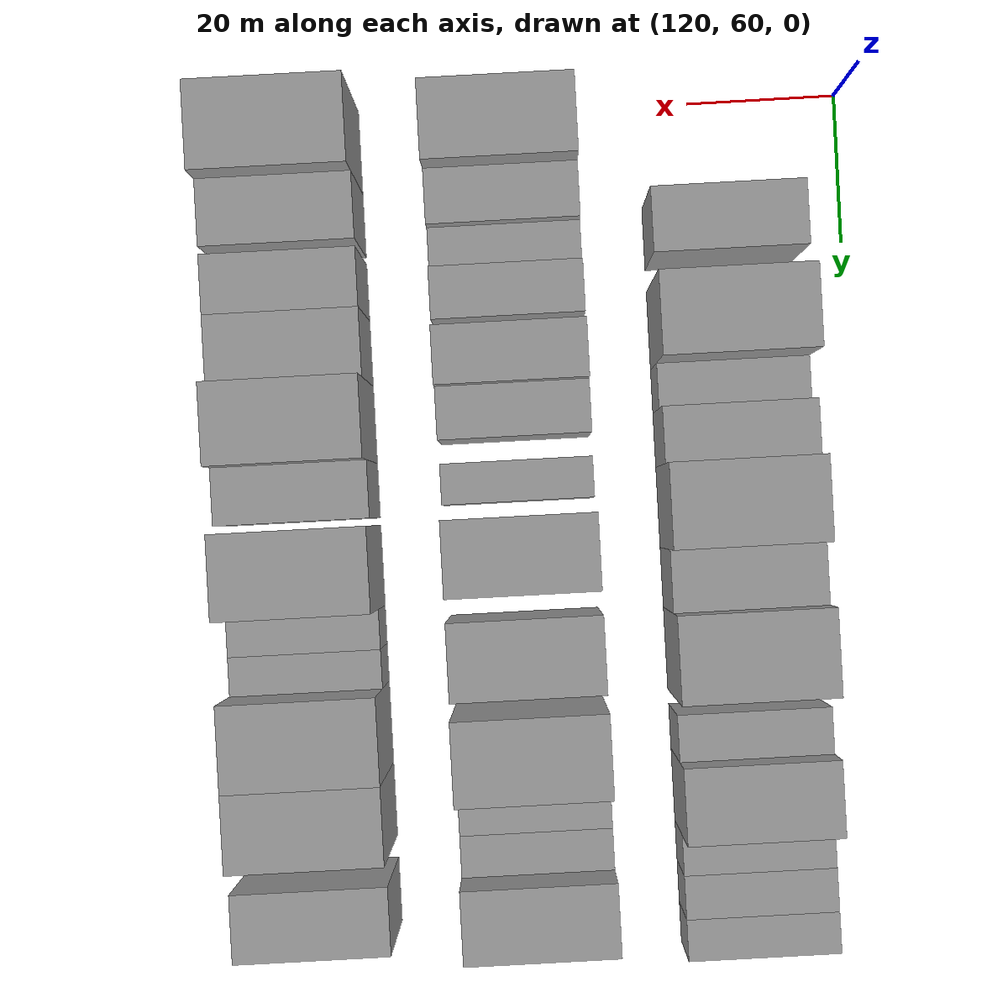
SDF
<sdf version="1.6">
 <world name="default">
  <model name="building_399">
   <static>1</static>
   <pose>137.0000 78.1749 0 0.000000 0.000000 0.000000</pose>
   <link name="link">
    <pose>0 0 9.00 0 0 0</pose>
    <collision name="collision"><geometry><box><size>20.0000 8.3979 18.0000</size></box></geometry></collision>
    <visual name="visual">
     <cast_shadows>0</cast_shadows>
     <geometry><box><size>20.0000 8.3979 18.0000</size></box></geometry>
     <material>
      <script>
       <uri>model://grey_wall/materials/scripts</uri>
       <uri>model://grey_wall/materials/textures</uri>
       <name>vrc/grey_wall</name>
      </script>
     </material>
    </visual>
   </link>
  </model>
  <model name="building_400">
   <static>1</static>
   <pose>137.0000 90.7172 0 0.000000 0.000000 0.000000</pose>
   <link name="link">
    <pose>0 0 12.00 0 0 0</pose>
    <collision name="collision"><geometry><box><size>20.0000 10.6866 24.0000</size></box></geometry></collision>
    <visual name="visual">
     <cast_shadows>0</cast_shadows>
     <geometry><box><size>20.0000 10.6866 24.0000</size></box></geometry>
     <material>
      <script>
       <uri>model://grey_wall/materials/scripts</uri>
       <uri>model://grey_wall/materials/textures</uri>
       <name>vrc/grey_wall</name>
      </script>
     </material>
    </visual>
   </link>
  </model>
  <model name="building_401">
   <static>1</static>
   <pose>137.0000 99.0380 0 0.000000 0.000000 0.000000</pose>
   <link name="link">
    <pose>0 0 6.00 0 0 0</pose>
    <collision name="collision"><geometry><box><size>20.0000 5.9550 12.0000</size></box></geometry></collision>
    <visual name="visual">
     <cast_shadows>0</cast_shadows>
     <geometry><box><size>20.0000 5.9550 12.0000</size></box></geometry>
     <material>
      <script>
       <uri>model://grey_wall/materials/scripts</uri>
       <uri>model://grey_wall/materials/textures</uri>
       <name>vrc/grey_wall</name>
      </script>
     </material>
    </visual>
   </link>
  </model>
  <model name="building_402">
   <static>1</static>
   <pose>137.0000 105.6827 0 0.000000 0.000000 0.000000</pose>
   <link name="link">
    <pose>0 0 9.00 0 0 0</pose>
    <collision name="collision"><geometry><box><size>20.0000 7.3345 18.0000</size></box></geometry></collision>
    <visual name="visual">
     <cast_shadows>0</cast_shadows>
     <geometry><box><size>20.0000 7.3345 18.0000</size></box></geometry>
     <material>
      <script>
       <uri>model://grey_wall/materials/scripts</uri>
       <uri>model://grey_wall/materials/textures</uri>
       <name>vrc/grey_wall</name>
      </script>
     </material>
    </visual>
   </link>
  </model>
  <model name="building_403">
   <static>1</static>
   <pose>137.0000 114.8335 0 0.000000 0.000000 0.000000</pose>
   <link name="link">
    <pose>0 0 12.00 0 0 0</pose>
    <collision name="collision"><geometry><box><size>20.0000 10.9670 24.0000</size></box></geometry></collision>
    <visual name="visual">
     <cast_shadows>0</cast_shadows>
     <geometry><box><size>20.0000 10.9670 24.0000</size></box></geometry>
     <material>
      <script>
       <uri>model://grey_wall/materials/scripts</uri>
       <uri>model://grey_wall/materials/textures</uri>
       <name>vrc/grey_wall</name>
      </script>
     </material>
    </visual>
   </link>
  </model>
  <model name="building_404">
   <static>1</static>
   <pose>137.0000 124.3932 0 0.000000 0.000000 0.000000</pose>
   <link name="link">
    <pose>0 0 9.00 0 0 0</pose>
    <collision name="collision"><geometry><box><size>20.0000 8.1525 18.0000</size></box></geometry></collision>
    <visual name="visual">
     <cast_shadows>0</cast_shadows>
     <geometry><box><size>20.0000 8.1525 18.0000</size></box></geometry>
     <material>
      <script>
       <uri>model://grey_wall/materials/scripts</uri>
       <uri>model://grey_wall/materials/textures</uri>
       <name>vrc/grey_wall</name>
      </script>
     </material>
    </visual>
   </link>
  </model>
  <model name="building_405">
   <static>1</static>
   <pose>137.0000 134.1068 0 0.000000 0.000000 0.000000</pose>
   <link name="link">
    <pose>0 0 12.00 0 0 0</pose>
    <collision name="collision"><geometry><box><size>20.0000 11.2747 24.0000</size></box></geometry></collision>
    <visual name="visual">
     <cast_shadows>0</cast_shadows>
     <geometry><box><size>20.0000 11.2747 24.0000</size></box></geometry>
     <material>
      <script>
       <uri>model://grey_wall/materials/scripts</uri>
       <uri>model://grey_wall/materials/textures</uri>
       <name>vrc/grey_wall</name>
      </script>
     </material>
    </visual>
   </link>
  </model>
  <model name="building_406">
   <static>1</static>
   <pose>137.0000 144.8030 0 0.000000 0.000000 0.000000</pose>
   <link name="link">
    <pose>0 0 7.50 0 0 0</pose>
    <collision name="collision"><geometry><box><size>20.0000 6.1178 15.0000</size></box></geometry></collision>
    <visual name="visual">
     <cast_shadows>0</cast_shadows>
     <geometry><box><size>20.0000 6.1178 15.0000</size></box></geometry>
     <material>
      <script>
       <uri>model://grey_wall/materials/scripts</uri>
       <uri>model://grey_wall/materials/textures</uri>
       <name>vrc/grey_wall</name>
      </script>
     </material>
    </visual>
   </link>
  </model>
  <model name="building_407">
   <static>1</static>
   <pose>137.0000 152.7903 0 0.000000 0.000000 0.000000</pose>
   <link name="link">
    <pose>0 0 10.50 0 0 0</pose>
    <collision name="collision"><geometry><box><size>20.0000 9.8567 21.0000</size></box></geometry></collision>
    <visual name="visual">
     <cast_shadows>0</cast_shadows>
     <geometry><box><size>20.0000 9.8567 21.0000</size></box></geometry>
     <material>
      <script>
       <uri>model://grey_wall/materials/scripts</uri>
       <uri>model://grey_wall/materials/textures</uri>
       <name>vrc/grey_wall</name>
      </script>
     </material>
    </visual>
   </link>
  </model>
  <model name="building_408">
   <static>1</static>
   <pose>137.0000 160.4090 0 0.000000 0.000000 0.000000</pose>
   <link name="link">
    <pose>0 0 6.00 0 0 0</pose>
    <collision name="collision"><geometry><box><size>20.0000 5.3807 12.0000</size></box></geometry></collision>
    <visual name="visual">
     <cast_shadows>0</cast_shadows>
     <geometry><box><size>20.0000 5.3807 12.0000</size></box></geometry>
     <material>
      <script>
       <uri>model://grey_wall/materials/scripts</uri>
       <uri>model://grey_wall/materials/textures</uri>
       <name>vrc/grey_wall</name>
      </script>
     </material>
    </visual>
   </link>
  </model>
  <model name="building_409">
   <static>1</static>
   <pose>137.0000 165.9657 0 0.000000 0.000000 0.000000</pose>
   <link name="link">
    <pose>0 0 6.00 0 0 0</pose>
    <collision name="collision"><geometry><box><size>20.0000 5.7328 12.0000</size></box></geometry></collision>
    <visual name="visual">
     <cast_shadows>0</cast_shadows>
     <geometry><box><size>20.0000 5.7328 12.0000</size></box></geometry>
     <material>
      <script>
       <uri>model://grey_wall/materials/scripts</uri>
       <uri>model://grey_wall/materials/textures</uri>
       <name>vrc/grey_wall</name>
      </script>
     </material>
    </visual>
   </link>
  </model>
  <model name="building_410">
   <static>1</static>
   <pose>137.0000 171.5463 0 0.000000 0.000000 0.000000</pose>
   <link name="link">
    <pose>0 0 6.00 0 0 0</pose>
    <collision name="collision"><geometry><box><size>20.0000 5.4285 12.0000</size></box></geometry></collision>
    <visual name="visual">
     <cast_shadows>0</cast_shadows>
     <geometry><box><size>20.0000 5.4285 12.0000</size></box></geometry>
     <material>
      <script>
       <uri>model://grey_wall/materials/scripts</uri>
       <uri>model://grey_wall/materials/textures</uri>
       <name>vrc/grey_wall</name>
      </script>
     </material>
    </visual>
   </link>
  </model>
  <model name="building_512">
   <static>1</static>
   <pose>166.0000 64.4476 0 0.000000 0.000000 0.000000</pose>
   <link name="link">
    <pose>0 0 10.50 0 0 0</pose>
    <collision name="collision"><geometry><box><size>20.0000 10.2427 21.0000</size></box></geometry></collision>
    <visual name="visual">
     <cast_shadows>0</cast_shadows>
     <geometry><box><size>20.0000 10.2427 21.0000</size></box></geometry>
     <material>
      <script>
       <uri>model://grey_wall/materials/scripts</uri>
       <uri>model://grey_wall/materials/textures</uri>
       <name>vrc/grey_wall</name>
      </script>
     </material>
    </visual>
   </link>
  </model>
  <model name="building_513">
   <static>1</static>
   <pose>166.0000 73.1745 0 0.000000 0.000000 0.000000</pose>
   <link name="link">
    <pose>0 0 7.50 0 0 0</pose>
    <collision name="collision"><geometry><box><size>20.0000 7.2111 15.0000</size></box></geometry></collision>
    <visual name="visual">
     <cast_shadows>0</cast_shadows>
     <geometry><box><size>20.0000 7.2111 15.0000</size></box></geometry>
     <material>
      <script>
       <uri>model://grey_wall/materials/scripts</uri>
       <uri>model://grey_wall/materials/textures</uri>
       <name>vrc/grey_wall</name>
      </script>
     </material>
    </visual>
   </link>
  </model>
  <model name="building_514">
   <static>1</static>
   <pose>166.0000 79.4996 0 0.000000 0.000000 0.000000</pose>
   <link name="link">
    <pose>0 0 6.00 0 0 0</pose>
    <collision name="collision"><geometry><box><size>20.0000 5.4392 12.0000</size></box></geometry></collision>
    <visual name="visual">
     <cast_shadows>0</cast_shadows>
     <geometry><box><size>20.0000 5.4392 12.0000</size></box></geometry>
     <material>
      <script>
       <uri>model://grey_wall/materials/scripts</uri>
       <uri>model://grey_wall/materials/textures</uri>
       <name>vrc/grey_wall</name>
      </script>
     </material>
    </visual>
   </link>
  </model>
  <model name="building_515">
   <static>1</static>
   <pose>166.0000 85.6482 0 0.000000 0.000000 0.000000</pose>
   <link name="link">
    <pose>0 0 7.50 0 0 0</pose>
    <collision name="collision"><geometry><box><size>20.0000 6.8579 15.0000</size></box></geometry></collision>
    <visual name="visual">
     <cast_shadows>0</cast_shadows>
     <geometry><box><size>20.0000 6.8579 15.0000</size></box></geometry>
     <material>
      <script>
       <uri>model://grey_wall/materials/scripts</uri>
       <uri>model://grey_wall/materials/textures</uri>
       <name>vrc/grey_wall</name>
      </script>
     </material>
    </visual>
   </link>
  </model>
  <model name="building_516">
   <static>1</static>
   <pose>166.0000 93.9031 0 0.000000 0.000000 0.000000</pose>
   <link name="link">
    <pose>0 0 9.00 0 0 0</pose>
    <collision name="collision"><geometry><box><size>20.0000 7.6520 18.0000</size></box></geometry></collision>
    <visual name="visual">
     <cast_shadows>0</cast_shadows>
     <geometry><box><size>20.0000 7.6520 18.0000</size></box></geometry>
     <material>
      <script>
       <uri>model://grey_wall/materials/scripts</uri>
       <uri>model://grey_wall/materials/textures</uri>
       <name>vrc/grey_wall</name>
      </script>
     </material>
    </visual>
   </link>
  </model>
  <model name="building_517">
   <static>1</static>
   <pose>166.0000 101.2007 0 0.000000 0.000000 0.000000</pose>
   <link name="link">
    <pose>0 0 7.50 0 0 0</pose>
    <collision name="collision"><geometry><box><size>20.0000 6.9432 15.0000</size></box></geometry></collision>
    <visual name="visual">
     <cast_shadows>0</cast_shadows>
     <geometry><box><size>20.0000 6.9432 15.0000</size></box></geometry>
     <material>
      <script>
       <uri>model://grey_wall/materials/scripts</uri>
       <uri>model://grey_wall/materials/textures</uri>
       <name>vrc/grey_wall</name>
      </script>
     </material>
    </visual>
   </link>
  </model>
  <model name="building_518">
   <static>1</static>
   <pose>166.0000 110.3545 0 0.000000 0.000000 0.000000</pose>
   <link name="link">
    <pose>0 0 6.00 0 0 0</pose>
    <collision name="collision"><geometry><box><size>20.0000 5.3643 12.0000</size></box></geometry></collision>
    <visual name="visual">
     <cast_shadows>0</cast_shadows>
     <geometry><box><size>20.0000 5.3643 12.0000</size></box></geometry>
     <material>
      <script>
       <uri>model://grey_wall/materials/scripts</uri>
       <uri>model://grey_wall/materials/textures</uri>
       <name>vrc/grey_wall</name>
      </script>
     </material>
    </visual>
   </link>
  </model>
  <model name="building_519">
   <static>1</static>
   <pose>166.0000 120.0226 0 0.000000 0.000000 0.000000</pose>
   <link name="link">
    <pose>0 0 10.50 0 0 0</pose>
    <collision name="collision"><geometry><box><size>20.0000 9.9720 21.0000</size></box></geometry></collision>
    <visual name="visual">
     <cast_shadows>0</cast_shadows>
     <geometry><box><size>20.0000 9.9720 21.0000</size></box></geometry>
     <material>
      <script>
       <uri>model://grey_wall/materials/scripts</uri>
       <uri>model://grey_wall/materials/textures</uri>
       <name>vrc/grey_wall</name>
      </script>
     </material>
    </visual>
   </link>
  </model>
  <model name="building_520">
   <static>1</static>
   <pose>166.0000 133.0747 0 0.000000 0.000000 0.000000</pose>
   <link name="link">
    <pose>0 0 10.50 0 0 0</pose>
    <collision name="collision"><geometry><box><size>20.0000 10.1322 21.0000</size></box></geometry></collision>
    <visual name="visual">
     <cast_shadows>0</cast_shadows>
     <geometry><box><size>20.0000 10.1322 21.0000</size></box></geometry>
     <material>
      <script>
       <uri>model://grey_wall/materials/scripts</uri>
       <uri>model://grey_wall/materials/textures</uri>
       <name>vrc/grey_wall</name>
      </script>
     </material>
    </visual>
   </link>
  </model>
  <model name="building_521">
   <static>1</static>
   <pose>166.0000 145.5571 0 0.000000 0.000000 0.000000</pose>
   <link name="link">
    <pose>0 0 12.00 0 0 0</pose>
    <collision name="collision"><geometry><box><size>20.0000 10.8326 24.0000</size></box></geometry></collision>
    <visual name="visual">
     <cast_shadows>0</cast_shadows>
     <geometry><box><size>20.0000 10.8326 24.0000</size></box></geometry>
     <material>
      <script>
       <uri>model://grey_wall/materials/scripts</uri>
       <uri>model://grey_wall/materials/textures</uri>
       <name>vrc/grey_wall</name>
      </script>
     </material>
    </visual>
   </link>
  </model>
  <model name="building_522">
   <static>1</static>
   <pose>166.0000 153.6445 0 0.000000 0.000000 0.000000</pose>
   <link name="link">
    <pose>0 0 6.00 0 0 0</pose>
    <collision name="collision"><geometry><box><size>20.0000 5.3422 12.0000</size></box></geometry></collision>
    <visual name="visual">
     <cast_shadows>0</cast_shadows>
     <geometry><box><size>20.0000 5.3422 12.0000</size></box></geometry>
     <material>
      <script>
       <uri>model://grey_wall/materials/scripts</uri>
       <uri>model://grey_wall/materials/textures</uri>
       <name>vrc/grey_wall</name>
      </script>
     </material>
    </visual>
   </link>
  </model>
  <model name="building_523">
   <static>1</static>
   <pose>166.0000 159.0457 0 0.000000 0.000000 0.000000</pose>
   <link name="link">
    <pose>0 0 6.00 0 0 0</pose>
    <collision name="collision"><geometry><box><size>20.0000 5.4603 12.0000</size></box></geometry></collision>
    <visual name="visual">
     <cast_shadows>0</cast_shadows>
     <geometry><box><size>20.0000 5.4603 12.0000</size></box></geometry>
     <material>
      <script>
       <uri>model://grey_wall/materials/scripts</uri>
       <uri>model://grey_wall/materials/textures</uri>
       <name>vrc/grey_wall</name>
      </script>
     </material>
    </visual>
   </link>
  </model>
  <model name="building_524">
   <static>1</static>
   <pose>166.0000 166.5235 0 0.000000 0.000000 0.000000</pose>
   <link name="link">
    <pose>0 0 10.50 0 0 0</pose>
    <collision name="collision"><geometry><box><size>20.0000 9.4952 21.0000</size></box></geometry></collision>
    <visual name="visual">
     <cast_shadows>0</cast_shadows>
     <geometry><box><size>20.0000 9.4952 21.0000</size></box></geometry>
     <material>
      <script>
       <uri>model://grey_wall/materials/scripts</uri>
       <uri>model://grey_wall/materials/textures</uri>
       <name>vrc/grey_wall</name>
      </script>
     </material>
    </visual>
   </link>
  </model>
  <model name="building_623">
   <static>1</static>
   <pose>195.0000 64.2519 0 0.000000 0.000000 0.000000</pose>
   <link name="link">
    <pose>0 0 12.00 0 0 0</pose>
    <collision name="collision"><geometry><box><size>20.0000 11.2796 24.0000</size></box></geometry></collision>
    <visual name="visual">
     <cast_shadows>0</cast_shadows>
     <geometry><box><size>20.0000 11.2796 24.0000</size></box></geometry>
     <material>
      <script>
       <uri>model://grey_wall/materials/scripts</uri>
       <uri>model://grey_wall/materials/textures</uri>
       <name>vrc/grey_wall</name>
      </script>
     </material>
    </visual>
   </link>
  </model>
  <model name="building_624">
   <static>1</static>
   <pose>195.0000 74.2127 0 0.000000 0.000000 0.000000</pose>
   <link name="link">
    <pose>0 0 9.00 0 0 0</pose>
    <collision name="collision"><geometry><box><size>20.0000 8.6419 18.0000</size></box></geometry></collision>
    <visual name="visual">
     <cast_shadows>0</cast_shadows>
     <geometry><box><size>20.0000 8.6419 18.0000</size></box></geometry>
     <material>
      <script>
       <uri>model://grey_wall/materials/scripts</uri>
       <uri>model://grey_wall/materials/textures</uri>
       <name>vrc/grey_wall</name>
      </script>
     </material>
    </visual>
   </link>
  </model>
  <model name="building_625">
   <static>1</static>
   <pose>195.0000 83.3840 0 0.000000 0.000000 0.000000</pose>
   <link name="link">
    <pose>0 0 9.00 0 0 0</pose>
    <collision name="collision"><geometry><box><size>20.0000 7.7006 18.0000</size></box></geometry></collision>
    <visual name="visual">
     <cast_shadows>0</cast_shadows>
     <geometry><box><size>20.0000 7.7006 18.0000</size></box></geometry>
     <material>
      <script>
       <uri>model://grey_wall/materials/scripts</uri>
       <uri>model://grey_wall/materials/textures</uri>
       <name>vrc/grey_wall</name>
      </script>
     </material>
    </visual>
   </link>
  </model>
  <model name="building_626">
   <static>1</static>
   <pose>195.0000 91.7137 0 0.000000 0.000000 0.000000</pose>
   <link name="link">
    <pose>0 0 9.00 0 0 0</pose>
    <collision name="collision"><geometry><box><size>20.0000 8.9588 18.0000</size></box></geometry></collision>
    <visual name="visual">
     <cast_shadows>0</cast_shadows>
     <geometry><box><size>20.0000 8.9588 18.0000</size></box></geometry>
     <material>
      <script>
       <uri>model://grey_wall/materials/scripts</uri>
       <uri>model://grey_wall/materials/textures</uri>
       <name>vrc/grey_wall</name>
      </script>
     </material>
    </visual>
   </link>
  </model>
  <model name="building_627">
   <static>1</static>
   <pose>195.0000 101.4723 0 0.000000 0.000000 0.000000</pose>
   <link name="link">
    <pose>0 0 12.00 0 0 0</pose>
    <collision name="collision"><geometry><box><size>20.0000 10.5584 24.0000</size></box></geometry></collision>
    <visual name="visual">
     <cast_shadows>0</cast_shadows>
     <geometry><box><size>20.0000 10.5584 24.0000</size></box></geometry>
     <material>
      <script>
       <uri>model://grey_wall/materials/scripts</uri>
       <uri>model://grey_wall/materials/textures</uri>
       <name>vrc/grey_wall</name>
      </script>
     </material>
    </visual>
   </link>
  </model>
  <model name="building_628">
   <static>1</static>
   <pose>195.0000 110.4838 0 0.000000 0.000000 0.000000</pose>
   <link name="link">
    <pose>0 0 9.00 0 0 0</pose>
    <collision name="collision"><geometry><box><size>20.0000 7.4645 18.0000</size></box></geometry></collision>
    <visual name="visual">
     <cast_shadows>0</cast_shadows>
     <geometry><box><size>20.0000 7.4645 18.0000</size></box></geometry>
     <material>
      <script>
       <uri>model://grey_wall/materials/scripts</uri>
       <uri>model://grey_wall/materials/textures</uri>
       <name>vrc/grey_wall</name>
      </script>
     </material>
    </visual>
   </link>
  </model>
  <model name="building_629">
   <static>1</static>
   <pose>195.0000 120.7027 0 0.000000 0.000000 0.000000</pose>
   <link name="link">
    <pose>0 0 12.00 0 0 0</pose>
    <collision name="collision"><geometry><box><size>20.0000 10.9732 24.0000</size></box></geometry></collision>
    <visual name="visual">
     <cast_shadows>0</cast_shadows>
     <geometry><box><size>20.0000 10.9732 24.0000</size></box></geometry>
     <material>
      <script>
       <uri>model://grey_wall/materials/scripts</uri>
       <uri>model://grey_wall/materials/textures</uri>
       <name>vrc/grey_wall</name>
      </script>
     </material>
    </visual>
   </link>
  </model>
  <model name="building_630">
   <static>1</static>
   <pose>195.0000 128.7973 0 0.000000 0.000000 0.000000</pose>
   <link name="link">
    <pose>0 0 6.00 0 0 0</pose>
    <collision name="collision"><geometry><box><size>20.0000 5.2162 12.0000</size></box></geometry></collision>
    <visual name="visual">
     <cast_shadows>0</cast_shadows>
     <geometry><box><size>20.0000 5.2162 12.0000</size></box></geometry>
     <material>
      <script>
       <uri>model://grey_wall/materials/scripts</uri>
       <uri>model://grey_wall/materials/textures</uri>
       <name>vrc/grey_wall</name>
      </script>
     </material>
    </visual>
   </link>
  </model>
  <model name="building_631">
   <static>1</static>
   <pose>195.0000 133.9758 0 0.000000 0.000000 0.000000</pose>
   <link name="link">
    <pose>0 0 6.00 0 0 0</pose>
    <collision name="collision"><geometry><box><size>20.0000 5.1408 12.0000</size></box></geometry></collision>
    <visual name="visual">
     <cast_shadows>0</cast_shadows>
     <geometry><box><size>20.0000 5.1408 12.0000</size></box></geometry>
     <material>
      <script>
       <uri>model://grey_wall/materials/scripts</uri>
       <uri>model://grey_wall/materials/textures</uri>
       <name>vrc/grey_wall</name>
      </script>
     </material>
    </visual>
   </link>
  </model>
  <model name="building_632">
   <static>1</static>
   <pose>195.0000 142.1165 0 0.000000 0.000000 0.000000</pose>
   <link name="link">
    <pose>0 0 12.00 0 0 0</pose>
    <collision name="collision"><geometry><box><size>20.0000 11.1408 24.0000</size></box></geometry></collision>
    <visual name="visual">
     <cast_shadows>0</cast_shadows>
     <geometry><box><size>20.0000 11.1408 24.0000</size></box></geometry>
     <material>
      <script>
       <uri>model://grey_wall/materials/scripts</uri>
       <uri>model://grey_wall/materials/textures</uri>
       <name>vrc/grey_wall</name>
      </script>
     </material>
    </visual>
   </link>
  </model>
  <model name="building_633">
   <static>1</static>
   <pose>195.0000 152.6745 0 0.000000 0.000000 0.000000</pose>
   <link name="link">
    <pose>0 0 12.00 0 0 0</pose>
    <collision name="collision"><geometry><box><size>20.0000 9.9751 24.0000</size></box></geometry></collision>
    <visual name="visual">
     <cast_shadows>0</cast_shadows>
     <geometry><box><size>20.0000 9.9751 24.0000</size></box></geometry>
     <material>
      <script>
       <uri>model://grey_wall/materials/scripts</uri>
       <uri>model://grey_wall/materials/textures</uri>
       <name>vrc/grey_wall</name>
      </script>
     </material>
    </visual>
   </link>
  </model>
  <model name="building_634">
   <static>1</static>
   <pose>195.0000 165.0442 0 0.000000 0.000000 0.000000</pose>
   <link name="link">
    <pose>0 0 10.50 0 0 0</pose>
    <collision name="collision"><geometry><box><size>20.0000 8.7644 21.0000</size></box></geometry></collision>
    <visual name="visual">
     <cast_shadows>0</cast_shadows>
     <geometry><box><size>20.0000 8.7644 21.0000</size></box></geometry>
     <material>
      <script>
       <uri>model://grey_wall/materials/scripts</uri>
       <uri>model://grey_wall/materials/textures</uri>
       <name>vrc/grey_wall</name>
      </script>
     </material>
    </visual>
   </link>
  </model>
 </world>
</sdf>
